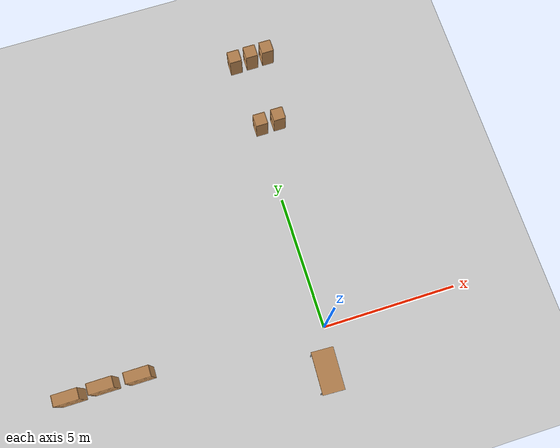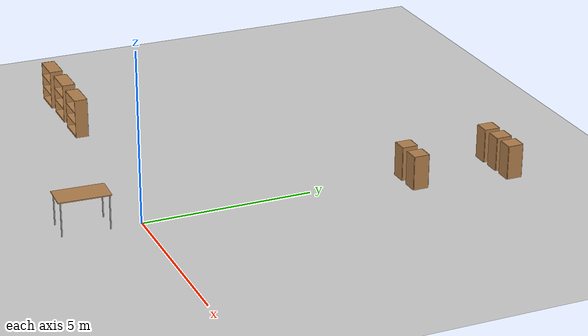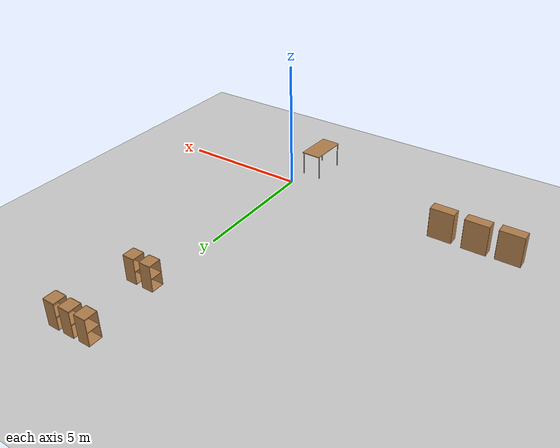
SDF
<sdf version="1.6">
 <world name="default">
  <model name="ground_plane">
   <static>1</static>
   <link name="link">
    <collision name="collision">
     <geometry><plane><normal>0 0 1</normal><size>100 100</size></plane></geometry>
     <surface><friction><ode><mu>100</mu><mu2>50</mu2></ode></friction></surface>
    </collision>
    <visual name="visual">
     <cast_shadows>0</cast_shadows>
     <geometry><plane><normal>0 0 1</normal><size>100 100</size></plane></geometry>
     <material>
      <script><uri>file://media/materials/scripts/gazebo.material</uri><name>Gazebo/Grey</name></script>
     </material>
    </visual>
   </link>
  </model>
  <model name="cabinet">
   <static>1</static>
   <link name="cabinet_bottom_plate">
    <inertial>
     <pose>0 0 -1 0 -0 0</pose>
     <inertia><ixx>2.05</ixx><ixy>0</ixy><ixz>0</ixz><iyy>2.05</iyy><iyz>0</iyz><izz>2.05</izz></inertia>
     <mass>25</mass>
    </inertial>
    <collision name="cabinet_bottom_plate_geom">
     <pose>0 0 0.01 0 -0 0</pose>
     <geometry><box><size>0.45 0.45 0.02</size></box></geometry>
    </collision>
    <visual name="cabinet_bottom_plate_geom_visual">
     <pose>0 0 0.01 0 -0 0</pose>
     <geometry><box><size>0.45 0.45 0.02</size></box></geometry>
     <material>
      <script><uri>file://media/materials/scripts/gazebo.material</uri><name>Gazebo/Wood</name></script>
     </material>
    </visual>
    <collision name="cabinet_bottom_plate_geom_cabinet_back_plate">
     <pose>0.235 0 0.51 0 -0 0</pose>
     <geometry><box><size>0.02 0.45 1.02</size></box></geometry>
    </collision>
    <visual name="cabinet_bottom_plate_geom_cabinet_back_plate_visual">
     <pose>0.235 0 0.51 0 -0 0</pose>
     <geometry><box><size>0.02 0.45 1.02</size></box></geometry>
     <material>
      <script><uri>file://media/materials/scripts/gazebo.material</uri><name>Gazebo/Wood</name></script>
     </material>
    </visual>
    <collision name="cabinet_bottom_plate_geom_cabinet_left_plate">
     <pose>0 0.235 0.51 0 -0 0</pose>
     <geometry><box><size>0.45 0.02 1.02</size></box></geometry>
    </collision>
    <visual name="cabinet_bottom_plate_geom_cabinet_left_plate_visual">
     <pose>0 0.235 0.51 0 -0 0</pose>
     <geometry><box><size>0.45 0.02 1.02</size></box></geometry>
     <material>
      <script><uri>file://media/materials/scripts/gazebo.material</uri><name>Gazebo/Wood</name></script>
     </material>
    </visual>
    <collision name="cabinet_bottom_plate_geom_cabinet_middle_plate">
     <pose>0 0 0.51 0 -0 0</pose>
     <geometry><box><size>0.45 0.45 0.02</size></box></geometry>
    </collision>
    <visual name="cabinet_bottom_plate_geom_cabinet_middle_plate_visual">
     <pose>0 0 0.51 0 -0 0</pose>
     <geometry><box><size>0.45 0.45 0.02</size></box></geometry>
     <material>
      <script><uri>file://media/materials/scripts/gazebo.material</uri><name>Gazebo/Wood</name></script>
     </material>
    </visual>
    <collision name="cabinet_bottom_plate_geom_cabinet_right_plate">
     <pose>0 -0.235 0.51 0 -0 0</pose>
     <geometry><box><size>0.45 0.02 1.02</size></box></geometry>
    </collision>
    <visual name="cabinet_bottom_plate_geom_cabinet_right_plate_visual">
     <pose>0 -0.235 0.51 0 -0 0</pose>
     <geometry><box><size>0.45 0.02 1.02</size></box></geometry>
     <material>
      <script><uri>file://media/materials/scripts/gazebo.material</uri><name>Gazebo/Wood</name></script>
     </material>
    </visual>
    <collision name="cabinet_bottom_plate_geom_cabinet_top_plate">
     <pose>0 0 1.01 0 -0 0</pose>
     <geometry><box><size>0.45 0.45 0.02</size></box></geometry>
    </collision>
    <visual name="cabinet_bottom_plate_geom_cabinet_top_plate_visual">
     <pose>0 0 1.01 0 -0 0</pose>
     <geometry><box><size>0.45 0.45 0.02</size></box></geometry>
     <material>
      <script><uri>file://media/materials/scripts/gazebo.material</uri><name>Gazebo/Wood</name></script>
     </material>
    </visual>
   </link>
   <pose>-0.133695 10.7508 0 0 -0 0</pose>
  </model>
  <model name="bookshelf">
   <static>1</static>
   <link name="link">
    <inertial><mass>1</mass></inertial>
    <collision name="back">
     <pose>0 0.005 0.6 0 -0 0</pose>
     <geometry><box><size>0.9 0.01 1.2</size></box></geometry>
    </collision>
    <visual name="visual1">
     <pose>0 0.005 0.6 0 -0 0</pose>
     <geometry><box><size>0.9 0.01 1.2</size></box></geometry>
     <material>
      <script><uri>file://media/materials/scripts/gazebo.material</uri><name>Gazebo/Wood</name></script>
     </material>
    </visual>
    <collision name="left_side">
     <pose>0.45 -0.195 0.6 0 -0 0</pose>
     <geometry><box><size>0.02 0.4 1.2</size></box></geometry>
    </collision>
    <visual name="visual2">
     <pose>0.45 -0.195 0.6 0 -0 0</pose>
     <geometry><box><size>0.02 0.4 1.2</size></box></geometry>
     <material>
      <script><uri>file://media/materials/scripts/gazebo.material</uri><name>Gazebo/Wood</name></script>
     </material>
    </visual>
    <collision name="right_side">
     <pose>-0.45 -0.195 0.6 0 -0 0</pose>
     <geometry><box><size>0.02 0.4 1.2</size></box></geometry>
    </collision>
    <visual name="visual3">
     <pose>-0.45 -0.195 0.6 0 -0 0</pose>
     <geometry><box><size>0.02 0.4 1.2</size></box></geometry>
     <material>
      <script><uri>file://media/materials/scripts/gazebo.material</uri><name>Gazebo/Wood</name></script>
     </material>
    </visual>
    <collision name="bottom">
     <pose>0 -0.195 0.03 0 -0 0</pose>
     <geometry><box><size>0.88 0.4 0.06</size></box></geometry>
    </collision>
    <visual name="visual4">
     <pose>0 -0.195 0.03 0 -0 0</pose>
     <geometry><box><size>0.88 0.4 0.06</size></box></geometry>
     <material>
      <script><uri>file://media/materials/scripts/gazebo.material</uri><name>Gazebo/Wood</name></script>
     </material>
    </visual>
    <collision name="top">
     <pose>0 -0.195 1.19 0 -0 0</pose>
     <geometry><box><size>0.88 0.4 0.02</size></box></geometry>
    </collision>
    <visual name="visual5">
     <pose>0 -0.195 1.19 0 -0 0</pose>
     <geometry><box><size>0.88 0.4 0.02</size></box></geometry>
     <material>
      <script><uri>file://media/materials/scripts/gazebo.material</uri><name>Gazebo/Wood</name></script>
     </material>
    </visual>
    <collision name="low_shelf">
     <pose>0 -0.195 0.43 0 -0 0</pose>
     <geometry><box><size>0.88 0.4 0.02</size></box></geometry>
    </collision>
    <visual name="visual6">
     <pose>0 -0.195 0.43 0 -0 0</pose>
     <geometry><box><size>0.88 0.4 0.02</size></box></geometry>
     <material>
      <script><uri>file://media/materials/scripts/gazebo.material</uri><name>Gazebo/Wood</name></script>
     </material>
    </visual>
    <collision name="high_shelf">
     <pose>0 -0.195 0.8 0 -0 0</pose>
     <geometry><box><size>0.88 0.4 0.02</size></box></geometry>
    </collision>
    <visual name="visual7">
     <pose>0 -0.195 0.8 0 -0 0</pose>
     <geometry><box><size>0.88 0.4 0.02</size></box></geometry>
     <material>
      <script><uri>file://media/materials/scripts/gazebo.material</uri><name>Gazebo/Wood</name></script>
     </material>
    </visual>
   </link>
   <pose>-9.1651 0.45973 0 0 -0 0</pose>
  </model>
  <model name="table_clone">
   <static>1</static>
   <link name="link">
    <collision name="surface">
     <pose>0 0 1 0 -0 0</pose>
     <geometry><box><size>1.5 0.8 0.03</size></box></geometry>
     <surface><friction><ode><mu>0.6</mu><mu2>0.6</mu2></ode></friction></surface>
    </collision>
    <visual name="visual1">
     <pose>0 0 1 0 -0 0</pose>
     <geometry><box><size>1.5 0.8 0.03</size></box></geometry>
     <material>
      <script><uri>file://media/materials/scripts/gazebo.material</uri><name>Gazebo/Wood</name></script>
     </material>
    </visual>
    <collision name="front_left_leg">
     <pose>0.68 0.38 0.5 0 -0 0</pose>
     <geometry><cylinder><radius>0.02</radius><length>1</length></cylinder></geometry>
    </collision>
    <visual name="front_left_leg">
     <pose>0.68 0.38 0.5 0 -0 0</pose>
     <geometry><cylinder><radius>0.02</radius><length>1</length></cylinder></geometry>
     <material>
      <script><uri>file://media/materials/scripts/gazebo.material</uri><name>Gazebo/Grey</name></script>
     </material>
    </visual>
    <collision name="front_right_leg">
     <pose>0.68 -0.38 0.5 0 -0 0</pose>
     <geometry><cylinder><radius>0.02</radius><length>1</length></cylinder></geometry>
    </collision>
    <visual name="front_right_leg">
     <pose>0.68 -0.38 0.5 0 -0 0</pose>
     <geometry><cylinder><radius>0.02</radius><length>1</length></cylinder></geometry>
     <material>
      <script><uri>file://media/materials/scripts/gazebo.material</uri><name>Gazebo/Grey</name></script>
     </material>
    </visual>
    <collision name="back_right_leg">
     <pose>-0.68 -0.38 0.5 0 -0 0</pose>
     <geometry><cylinder><radius>0.02</radius><length>1</length></cylinder></geometry>
    </collision>
    <visual name="back_right_leg">
     <pose>-0.68 -0.38 0.5 0 -0 0</pose>
     <geometry><cylinder><radius>0.02</radius><length>1</length></cylinder></geometry>
     <material>
      <script><uri>file://media/materials/scripts/gazebo.material</uri><name>Gazebo/Grey</name></script>
     </material>
    </visual>
    <collision name="back_left_leg">
     <pose>-0.68 0.38 0.5 0 -0 0</pose>
     <geometry><cylinder><radius>0.02</radius><length>1</length></cylinder></geometry>
    </collision>
    <visual name="back_left_leg">
     <pose>-0.68 0.38 0.5 0 -0 0</pose>
     <geometry><cylinder><radius>0.02</radius><length>1</length></cylinder></geometry>
     <material>
      <script><uri>file://media/materials/scripts/gazebo.material</uri><name>Gazebo/Grey</name></script>
     </material>
    </visual>
   </link>
   <pose>-0.427624 -1.53799 0 0 -0 1.52977</pose>
  </model>
  <model name="bookshelf_clone">
   <static>1</static>
   <link name="link">
    <inertial><mass>1</mass></inertial>
    <collision name="back">
     <pose>0 0.005 0.6 0 -0 0</pose>
     <geometry><box><size>0.9 0.01 1.2</size></box></geometry>
    </collision>
    <visual name="visual1">
     <pose>0 0.005 0.6 0 -0 0</pose>
     <geometry><box><size>0.9 0.01 1.2</size></box></geometry>
     <material>
      <script><uri>file://media/materials/scripts/gazebo.material</uri><name>Gazebo/Wood</name></script>
     </material>
    </visual>
    <collision name="left_side">
     <pose>0.45 -0.195 0.6 0 -0 0</pose>
     <geometry><box><size>0.02 0.4 1.2</size></box></geometry>
    </collision>
    <visual name="visual2">
     <pose>0.45 -0.195 0.6 0 -0 0</pose>
     <geometry><box><size>0.02 0.4 1.2</size></box></geometry>
     <material>
      <script><uri>file://media/materials/scripts/gazebo.material</uri><name>Gazebo/Wood</name></script>
     </material>
    </visual>
    <collision name="right_side">
     <pose>-0.45 -0.195 0.6 0 -0 0</pose>
     <geometry><box><size>0.02 0.4 1.2</size></box></geometry>
    </collision>
    <visual name="visual3">
     <pose>-0.45 -0.195 0.6 0 -0 0</pose>
     <geometry><box><size>0.02 0.4 1.2</size></box></geometry>
     <material>
      <script><uri>file://media/materials/scripts/gazebo.material</uri><name>Gazebo/Wood</name></script>
     </material>
    </visual>
    <collision name="bottom">
     <pose>0 -0.195 0.03 0 -0 0</pose>
     <geometry><box><size>0.88 0.4 0.06</size></box></geometry>
    </collision>
    <visual name="visual4">
     <pose>0 -0.195 0.03 0 -0 0</pose>
     <geometry><box><size>0.88 0.4 0.06</size></box></geometry>
     <material>
      <script><uri>file://media/materials/scripts/gazebo.material</uri><name>Gazebo/Wood</name></script>
     </material>
    </visual>
    <collision name="top">
     <pose>0 -0.195 1.19 0 -0 0</pose>
     <geometry><box><size>0.88 0.4 0.02</size></box></geometry>
    </collision>
    <visual name="visual5">
     <pose>0 -0.195 1.19 0 -0 0</pose>
     <geometry><box><size>0.88 0.4 0.02</size></box></geometry>
     <material>
      <script><uri>file://media/materials/scripts/gazebo.material</uri><name>Gazebo/Wood</name></script>
     </material>
    </visual>
    <collision name="low_shelf">
     <pose>0 -0.195 0.43 0 -0 0</pose>
     <geometry><box><size>0.88 0.4 0.02</size></box></geometry>
    </collision>
    <visual name="visual6">
     <pose>0 -0.195 0.43 0 -0 0</pose>
     <geometry><box><size>0.88 0.4 0.02</size></box></geometry>
     <material>
      <script><uri>file://media/materials/scripts/gazebo.material</uri><name>Gazebo/Wood</name></script>
     </material>
    </visual>
    <collision name="high_shelf">
     <pose>0 -0.195 0.8 0 -0 0</pose>
     <geometry><box><size>0.88 0.4 0.02</size></box></geometry>
    </collision>
    <visual name="visual7">
     <pose>0 -0.195 0.8 0 -0 0</pose>
     <geometry><box><size>0.88 0.4 0.02</size></box></geometry>
     <material>
      <script><uri>file://media/materials/scripts/gazebo.material</uri><name>Gazebo/Wood</name></script>
     </material>
    </visual>
   </link>
   <pose>-7.9547 0.489042 0 0 -0 0</pose>
  </model>
  <model name="bookshelf_clone_0">
   <static>1</static>
   <link name="link">
    <inertial><mass>1</mass></inertial>
    <collision name="back">
     <pose>0 0.005 0.6 0 -0 0</pose>
     <geometry><box><size>0.9 0.01 1.2</size></box></geometry>
    </collision>
    <visual name="visual1">
     <pose>0 0.005 0.6 0 -0 0</pose>
     <geometry><box><size>0.9 0.01 1.2</size></box></geometry>
     <material>
      <script><uri>file://media/materials/scripts/gazebo.material</uri><name>Gazebo/Wood</name></script>
     </material>
    </visual>
    <collision name="left_side">
     <pose>0.45 -0.195 0.6 0 -0 0</pose>
     <geometry><box><size>0.02 0.4 1.2</size></box></geometry>
    </collision>
    <visual name="visual2">
     <pose>0.45 -0.195 0.6 0 -0 0</pose>
     <geometry><box><size>0.02 0.4 1.2</size></box></geometry>
     <material>
      <script><uri>file://media/materials/scripts/gazebo.material</uri><name>Gazebo/Wood</name></script>
     </material>
    </visual>
    <collision name="right_side">
     <pose>-0.45 -0.195 0.6 0 -0 0</pose>
     <geometry><box><size>0.02 0.4 1.2</size></box></geometry>
    </collision>
    <visual name="visual3">
     <pose>-0.45 -0.195 0.6 0 -0 0</pose>
     <geometry><box><size>0.02 0.4 1.2</size></box></geometry>
     <material>
      <script><uri>file://media/materials/scripts/gazebo.material</uri><name>Gazebo/Wood</name></script>
     </material>
    </visual>
    <collision name="bottom">
     <pose>0 -0.195 0.03 0 -0 0</pose>
     <geometry><box><size>0.88 0.4 0.06</size></box></geometry>
    </collision>
    <visual name="visual4">
     <pose>0 -0.195 0.03 0 -0 0</pose>
     <geometry><box><size>0.88 0.4 0.06</size></box></geometry>
     <material>
      <script><uri>file://media/materials/scripts/gazebo.material</uri><name>Gazebo/Wood</name></script>
     </material>
    </visual>
    <collision name="top">
     <pose>0 -0.195 1.19 0 -0 0</pose>
     <geometry><box><size>0.88 0.4 0.02</size></box></geometry>
    </collision>
    <visual name="visual5">
     <pose>0 -0.195 1.19 0 -0 0</pose>
     <geometry><box><size>0.88 0.4 0.02</size></box></geometry>
     <material>
      <script><uri>file://media/materials/scripts/gazebo.material</uri><name>Gazebo/Wood</name></script>
     </material>
    </visual>
    <collision name="low_shelf">
     <pose>0 -0.195 0.43 0 -0 0</pose>
     <geometry><box><size>0.88 0.4 0.02</size></box></geometry>
    </collision>
    <visual name="visual6">
     <pose>0 -0.195 0.43 0 -0 0</pose>
     <geometry><box><size>0.88 0.4 0.02</size></box></geometry>
     <material>
      <script><uri>file://media/materials/scripts/gazebo.material</uri><name>Gazebo/Wood</name></script>
     </material>
    </visual>
    <collision name="high_shelf">
     <pose>0 -0.195 0.8 0 -0 0</pose>
     <geometry><box><size>0.88 0.4 0.02</size></box></geometry>
    </collision>
    <visual name="visual7">
     <pose>0 -0.195 0.8 0 -0 0</pose>
     <geometry><box><size>0.88 0.4 0.02</size></box></geometry>
     <material>
      <script><uri>file://media/materials/scripts/gazebo.material</uri><name>Gazebo/Wood</name></script>
     </material>
    </visual>
   </link>
   <pose>-6.66876 0.467681 0 0 -0 0</pose>
  </model>
  <model name="cabinet_clone">
   <static>1</static>
   <link name="cabinet_bottom_plate">
    <inertial>
     <pose>0 0 -1 0 -0 0</pose>
     <inertia><ixx>2.05</ixx><ixy>0</ixy><ixz>0</ixz><iyy>2.05</iyy><iyz>0</iyz><izz>2.05</izz></inertia>
     <mass>25</mass>
    </inertial>
    <collision name="cabinet_bottom_plate_geom">
     <pose>0 0 0.01 0 -0 0</pose>
     <geometry><box><size>0.45 0.45 0.02</size></box></geometry>
    </collision>
    <visual name="cabinet_bottom_plate_geom_visual">
     <pose>0 0 0.01 0 -0 0</pose>
     <geometry><box><size>0.45 0.45 0.02</size></box></geometry>
     <material>
      <script><uri>file://media/materials/scripts/gazebo.material</uri><name>Gazebo/Wood</name></script>
     </material>
    </visual>
    <collision name="cabinet_bottom_plate_geom_cabinet_back_plate">
     <pose>0.235 0 0.51 0 -0 0</pose>
     <geometry><box><size>0.02 0.45 1.02</size></box></geometry>
    </collision>
    <visual name="cabinet_bottom_plate_geom_cabinet_back_plate_visual">
     <pose>0.235 0 0.51 0 -0 0</pose>
     <geometry><box><size>0.02 0.45 1.02</size></box></geometry>
     <material>
      <script><uri>file://media/materials/scripts/gazebo.material</uri><name>Gazebo/Wood</name></script>
     </material>
    </visual>
    <collision name="cabinet_bottom_plate_geom_cabinet_left_plate">
     <pose>0 0.235 0.51 0 -0 0</pose>
     <geometry><box><size>0.45 0.02 1.02</size></box></geometry>
    </collision>
    <visual name="cabinet_bottom_plate_geom_cabinet_left_plate_visual">
     <pose>0 0.235 0.51 0 -0 0</pose>
     <geometry><box><size>0.45 0.02 1.02</size></box></geometry>
     <material>
      <script><uri>file://media/materials/scripts/gazebo.material</uri><name>Gazebo/Wood</name></script>
     </material>
    </visual>
    <collision name="cabinet_bottom_plate_geom_cabinet_middle_plate">
     <pose>0 0 0.51 0 -0 0</pose>
     <geometry><box><size>0.45 0.45 0.02</size></box></geometry>
    </collision>
    <visual name="cabinet_bottom_plate_geom_cabinet_middle_plate_visual">
     <pose>0 0 0.51 0 -0 0</pose>
     <geometry><box><size>0.45 0.45 0.02</size></box></geometry>
     <material>
      <script><uri>file://media/materials/scripts/gazebo.material</uri><name>Gazebo/Wood</name></script>
     </material>
    </visual>
    <collision name="cabinet_bottom_plate_geom_cabinet_right_plate">
     <pose>0 -0.235 0.51 0 -0 0</pose>
     <geometry><box><size>0.45 0.02 1.02</size></box></geometry>
    </collision>
    <visual name="cabinet_bottom_plate_geom_cabinet_right_plate_visual">
     <pose>0 -0.235 0.51 0 -0 0</pose>
     <geometry><box><size>0.45 0.02 1.02</size></box></geometry>
     <material>
      <script><uri>file://media/materials/scripts/gazebo.material</uri><name>Gazebo/Wood</name></script>
     </material>
    </visual>
    <collision name="cabinet_bottom_plate_geom_cabinet_top_plate">
     <pose>0 0 1.01 0 -0 0</pose>
     <geometry><box><size>0.45 0.45 0.02</size></box></geometry>
    </collision>
    <visual name="cabinet_bottom_plate_geom_cabinet_top_plate_visual">
     <pose>0 0 1.01 0 -0 0</pose>
     <geometry><box><size>0.45 0.45 0.02</size></box></geometry>
     <material>
      <script><uri>file://media/materials/scripts/gazebo.material</uri><name>Gazebo/Wood</name></script>
     </material>
    </visual>
   </link>
   <pose>0.518667 10.7725 0 0 -0 0</pose>
  </model>
  <model name="cabinet_clone_0">
   <static>1</static>
   <link name="cabinet_bottom_plate">
    <inertial>
     <pose>0 0 -1 0 -0 0</pose>
     <inertia><ixx>2.05</ixx><ixy>0</ixy><ixz>0</ixz><iyy>2.05</iyy><iyz>0</iyz><izz>2.05</izz></inertia>
     <mass>25</mass>
    </inertial>
    <collision name="cabinet_bottom_plate_geom">
     <pose>0 0 0.01 0 -0 0</pose>
     <geometry><box><size>0.45 0.45 0.02</size></box></geometry>
    </collision>
    <visual name="cabinet_bottom_plate_geom_visual">
     <pose>0 0 0.01 0 -0 0</pose>
     <geometry><box><size>0.45 0.45 0.02</size></box></geometry>
     <material>
      <script><uri>file://media/materials/scripts/gazebo.material</uri><name>Gazebo/Wood</name></script>
     </material>
    </visual>
    <collision name="cabinet_bottom_plate_geom_cabinet_back_plate">
     <pose>0.235 0 0.51 0 -0 0</pose>
     <geometry><box><size>0.02 0.45 1.02</size></box></geometry>
    </collision>
    <visual name="cabinet_bottom_plate_geom_cabinet_back_plate_visual">
     <pose>0.235 0 0.51 0 -0 0</pose>
     <geometry><box><size>0.02 0.45 1.02</size></box></geometry>
     <material>
      <script><uri>file://media/materials/scripts/gazebo.material</uri><name>Gazebo/Wood</name></script>
     </material>
    </visual>
    <collision name="cabinet_bottom_plate_geom_cabinet_left_plate">
     <pose>0 0.235 0.51 0 -0 0</pose>
     <geometry><box><size>0.45 0.02 1.02</size></box></geometry>
    </collision>
    <visual name="cabinet_bottom_plate_geom_cabinet_left_plate_visual">
     <pose>0 0.235 0.51 0 -0 0</pose>
     <geometry><box><size>0.45 0.02 1.02</size></box></geometry>
     <material>
      <script><uri>file://media/materials/scripts/gazebo.material</uri><name>Gazebo/Wood</name></script>
     </material>
    </visual>
    <collision name="cabinet_bottom_plate_geom_cabinet_middle_plate">
     <pose>0 0 0.51 0 -0 0</pose>
     <geometry><box><size>0.45 0.45 0.02</size></box></geometry>
    </collision>
    <visual name="cabinet_bottom_plate_geom_cabinet_middle_plate_visual">
     <pose>0 0 0.51 0 -0 0</pose>
     <geometry><box><size>0.45 0.45 0.02</size></box></geometry>
     <material>
      <script><uri>file://media/materials/scripts/gazebo.material</uri><name>Gazebo/Wood</name></script>
     </material>
    </visual>
    <collision name="cabinet_bottom_plate_geom_cabinet_right_plate">
     <pose>0 -0.235 0.51 0 -0 0</pose>
     <geometry><box><size>0.45 0.02 1.02</size></box></geometry>
    </collision>
    <visual name="cabinet_bottom_plate_geom_cabinet_right_plate_visual">
     <pose>0 -0.235 0.51 0 -0 0</pose>
     <geometry><box><size>0.45 0.02 1.02</size></box></geometry>
     <material>
      <script><uri>file://media/materials/scripts/gazebo.material</uri><name>Gazebo/Wood</name></script>
     </material>
    </visual>
    <collision name="cabinet_bottom_plate_geom_cabinet_top_plate">
     <pose>0 0 1.01 0 -0 0</pose>
     <geometry><box><size>0.45 0.45 0.02</size></box></geometry>
    </collision>
    <visual name="cabinet_bottom_plate_geom_cabinet_top_plate_visual">
     <pose>0 0 1.01 0 -0 0</pose>
     <geometry><box><size>0.45 0.45 0.02</size></box></geometry>
     <material>
      <script><uri>file://media/materials/scripts/gazebo.material</uri><name>Gazebo/Wood</name></script>
     </material>
    </visual>
   </link>
   <pose>1.15878 10.7877 0 0 -0 0</pose>
  </model>
  <model name="cabinet_clone_1">
   <static>1</static>
   <link name="cabinet_bottom_plate">
    <inertial>
     <pose>0 0 -1 0 -0 0</pose>
     <inertia><ixx>2.05</ixx><ixy>0</ixy><ixz>0</ixz><iyy>2.05</iyy><iyz>0</iyz><izz>2.05</izz></inertia>
     <mass>25</mass>
    </inertial>
    <collision name="cabinet_bottom_plate_geom">
     <pose>0 0 0.01 0 -0 0</pose>
     <geometry><box><size>0.45 0.45 0.02</size></box></geometry>
    </collision>
    <visual name="cabinet_bottom_plate_geom_visual">
     <pose>0 0 0.01 0 -0 0</pose>
     <geometry><box><size>0.45 0.45 0.02</size></box></geometry>
     <material>
      <script><uri>file://media/materials/scripts/gazebo.material</uri><name>Gazebo/Wood</name></script>
     </material>
    </visual>
    <collision name="cabinet_bottom_plate_geom_cabinet_back_plate">
     <pose>0.235 0 0.51 0 -0 0</pose>
     <geometry><box><size>0.02 0.45 1.02</size></box></geometry>
    </collision>
    <visual name="cabinet_bottom_plate_geom_cabinet_back_plate_visual">
     <pose>0.235 0 0.51 0 -0 0</pose>
     <geometry><box><size>0.02 0.45 1.02</size></box></geometry>
     <material>
      <script><uri>file://media/materials/scripts/gazebo.material</uri><name>Gazebo/Wood</name></script>
     </material>
    </visual>
    <collision name="cabinet_bottom_plate_geom_cabinet_left_plate">
     <pose>0 0.235 0.51 0 -0 0</pose>
     <geometry><box><size>0.45 0.02 1.02</size></box></geometry>
    </collision>
    <visual name="cabinet_bottom_plate_geom_cabinet_left_plate_visual">
     <pose>0 0.235 0.51 0 -0 0</pose>
     <geometry><box><size>0.45 0.02 1.02</size></box></geometry>
     <material>
      <script><uri>file://media/materials/scripts/gazebo.material</uri><name>Gazebo/Wood</name></script>
     </material>
    </visual>
    <collision name="cabinet_bottom_plate_geom_cabinet_middle_plate">
     <pose>0 0 0.51 0 -0 0</pose>
     <geometry><box><size>0.45 0.45 0.02</size></box></geometry>
    </collision>
    <visual name="cabinet_bottom_plate_geom_cabinet_middle_plate_visual">
     <pose>0 0 0.51 0 -0 0</pose>
     <geometry><box><size>0.45 0.45 0.02</size></box></geometry>
     <material>
      <script><uri>file://media/materials/scripts/gazebo.material</uri><name>Gazebo/Wood</name></script>
     </material>
    </visual>
    <collision name="cabinet_bottom_plate_geom_cabinet_right_plate">
     <pose>0 -0.235 0.51 0 -0 0</pose>
     <geometry><box><size>0.45 0.02 1.02</size></box></geometry>
    </collision>
    <visual name="cabinet_bottom_plate_geom_cabinet_right_plate_visual">
     <pose>0 -0.235 0.51 0 -0 0</pose>
     <geometry><box><size>0.45 0.02 1.02</size></box></geometry>
     <material>
      <script><uri>file://media/materials/scripts/gazebo.material</uri><name>Gazebo/Wood</name></script>
     </material>
    </visual>
    <collision name="cabinet_bottom_plate_geom_cabinet_top_plate">
     <pose>0 0 1.01 0 -0 0</pose>
     <geometry><box><size>0.45 0.45 0.02</size></box></geometry>
    </collision>
    <visual name="cabinet_bottom_plate_geom_cabinet_top_plate_visual">
     <pose>0 0 1.01 0 -0 0</pose>
     <geometry><box><size>0.45 0.45 0.02</size></box></geometry>
     <material>
      <script><uri>file://media/materials/scripts/gazebo.material</uri><name>Gazebo/Wood</name></script>
     </material>
    </visual>
   </link>
   <pose>0.065893 7.98037 0 0 -0 0</pose>
  </model>
  <model name="cabinet_clone_2">
   <static>1</static>
   <link name="cabinet_bottom_plate">
    <inertial>
     <pose>0 0 -1 0 -0 0</pose>
     <inertia><ixx>2.05</ixx><ixy>0</ixy><ixz>0</ixz><iyy>2.05</iyy><iyz>0</iyz><izz>2.05</izz></inertia>
     <mass>25</mass>
    </inertial>
    <collision name="cabinet_bottom_plate_geom">
     <pose>0 0 0.01 0 -0 0</pose>
     <geometry><box><size>0.45 0.45 0.02</size></box></geometry>
    </collision>
    <visual name="cabinet_bottom_plate_geom_visual">
     <pose>0 0 0.01 0 -0 0</pose>
     <geometry><box><size>0.45 0.45 0.02</size></box></geometry>
     <material>
      <script><uri>file://media/materials/scripts/gazebo.material</uri><name>Gazebo/Wood</name></script>
     </material>
    </visual>
    <collision name="cabinet_bottom_plate_geom_cabinet_back_plate">
     <pose>0.235 0 0.51 0 -0 0</pose>
     <geometry><box><size>0.02 0.45 1.02</size></box></geometry>
    </collision>
    <visual name="cabinet_bottom_plate_geom_cabinet_back_plate_visual">
     <pose>0.235 0 0.51 0 -0 0</pose>
     <geometry><box><size>0.02 0.45 1.02</size></box></geometry>
     <material>
      <script><uri>file://media/materials/scripts/gazebo.material</uri><name>Gazebo/Wood</name></script>
     </material>
    </visual>
    <collision name="cabinet_bottom_plate_geom_cabinet_left_plate">
     <pose>0 0.235 0.51 0 -0 0</pose>
     <geometry><box><size>0.45 0.02 1.02</size></box></geometry>
    </collision>
    <visual name="cabinet_bottom_plate_geom_cabinet_left_plate_visual">
     <pose>0 0.235 0.51 0 -0 0</pose>
     <geometry><box><size>0.45 0.02 1.02</size></box></geometry>
     <material>
      <script><uri>file://media/materials/scripts/gazebo.material</uri><name>Gazebo/Wood</name></script>
     </material>
    </visual>
    <collision name="cabinet_bottom_plate_geom_cabinet_middle_plate">
     <pose>0 0 0.51 0 -0 0</pose>
     <geometry><box><size>0.45 0.45 0.02</size></box></geometry>
    </collision>
    <visual name="cabinet_bottom_plate_geom_cabinet_middle_plate_visual">
     <pose>0 0 0.51 0 -0 0</pose>
     <geometry><box><size>0.45 0.45 0.02</size></box></geometry>
     <material>
      <script><uri>file://media/materials/scripts/gazebo.material</uri><name>Gazebo/Wood</name></script>
     </material>
    </visual>
    <collision name="cabinet_bottom_plate_geom_cabinet_right_plate">
     <pose>0 -0.235 0.51 0 -0 0</pose>
     <geometry><box><size>0.45 0.02 1.02</size></box></geometry>
    </collision>
    <visual name="cabinet_bottom_plate_geom_cabinet_right_plate_visual">
     <pose>0 -0.235 0.51 0 -0 0</pose>
     <geometry><box><size>0.45 0.02 1.02</size></box></geometry>
     <material>
      <script><uri>file://media/materials/scripts/gazebo.material</uri><name>Gazebo/Wood</name></script>
     </material>
    </visual>
    <collision name="cabinet_bottom_plate_geom_cabinet_top_plate">
     <pose>0 0 1.01 0 -0 0</pose>
     <geometry><box><size>0.45 0.45 0.02</size></box></geometry>
    </collision>
    <visual name="cabinet_bottom_plate_geom_cabinet_top_plate_visual">
     <pose>0 0 1.01 0 -0 0</pose>
     <geometry><box><size>0.45 0.45 0.02</size></box></geometry>
     <material>
      <script><uri>file://media/materials/scripts/gazebo.material</uri><name>Gazebo/Wood</name></script>
     </material>
    </visual>
   </link>
   <pose>0.766564 7.9919 0 0 -0 0</pose>
  </model>
 </world>
</sdf>
